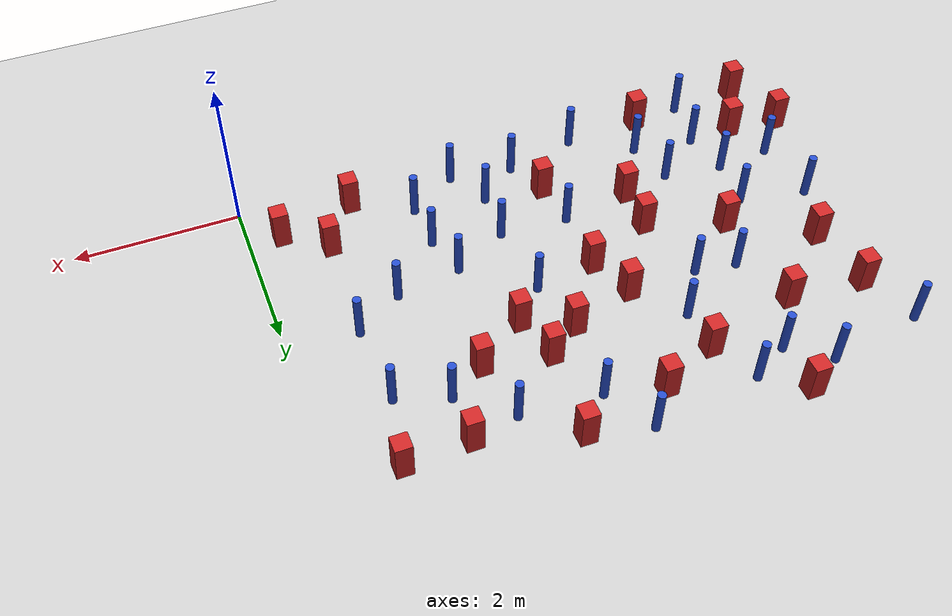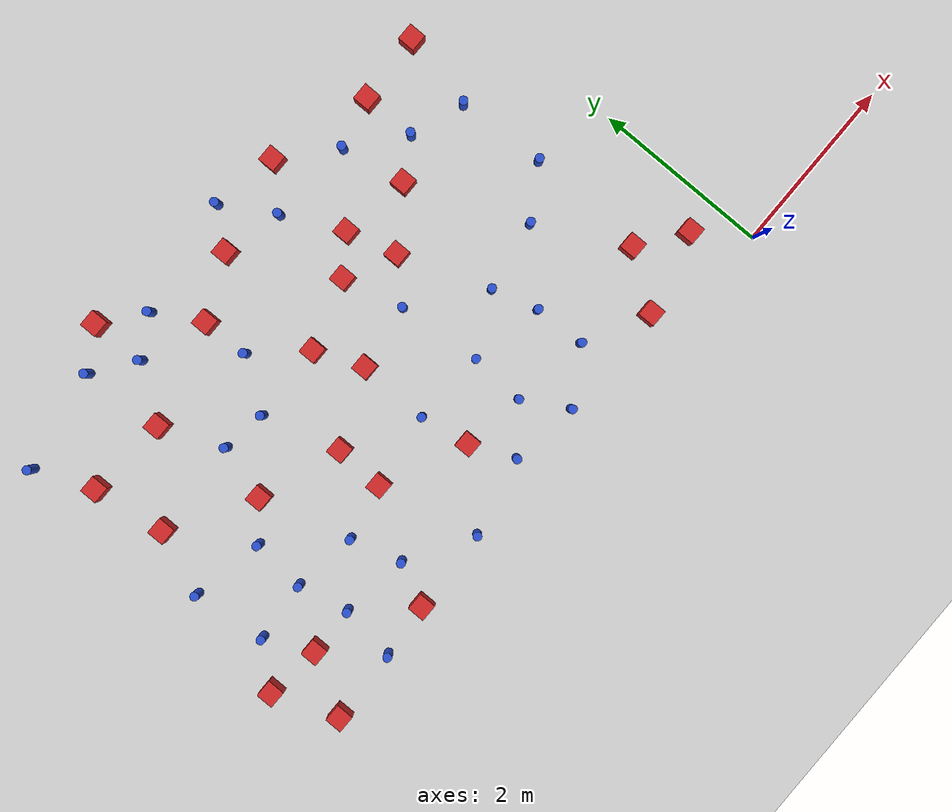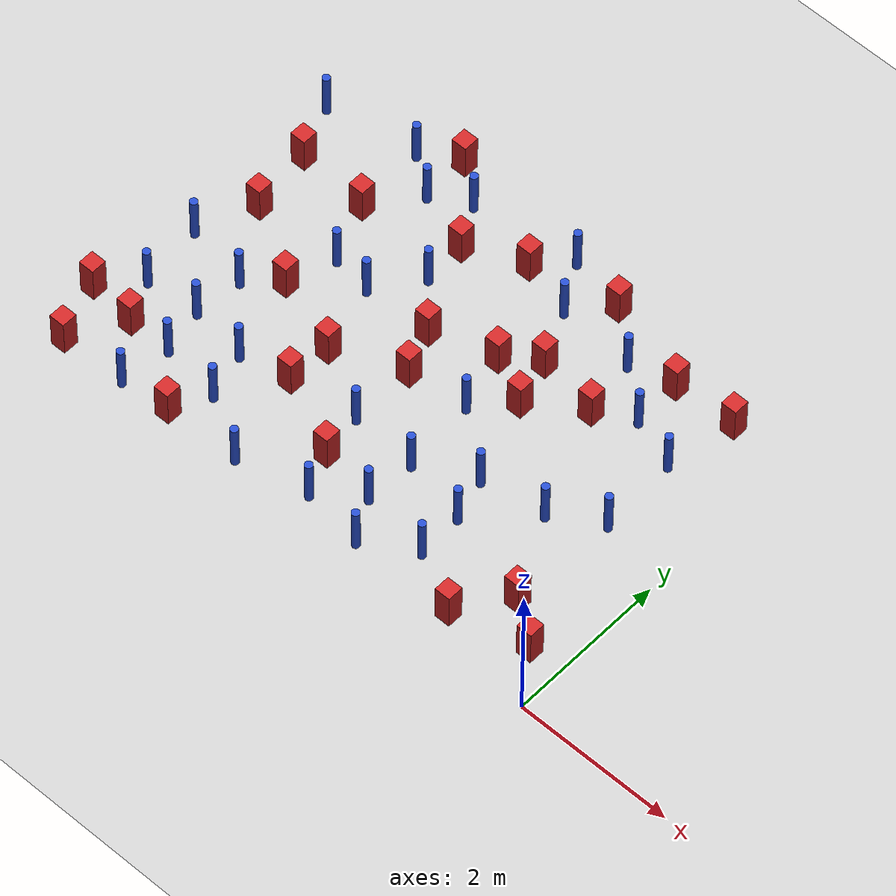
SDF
<sdf version="1.6">
 <world name="default">
  <model name="ground_plane">
   <static>1</static>
   <link name="link">
    <collision name="collision">
     <geometry><plane><normal>0 0 1</normal><size>100 100</size></plane></geometry>
     <surface><friction><ode><mu>100</mu><mu2>50</mu2></ode></friction></surface>
    </collision>
    <visual name="visual">
     <cast_shadows>0</cast_shadows>
     <geometry><plane><normal>0 0 1</normal><size>100 100</size></plane></geometry>
     <material>
      <ambient>1.0 1.0 1.0 1.0</ambient>
      <diffuse>0.8 0.8 0.8 1.0</diffuse>
      <specular>0.01 0.01 0.01 1.000000</specular>
     </material>
    </visual>
   </link>
  </model>
  <model name="pole_obstacle0">
   <static>true</static>
   <pose>-0.848686420528 2.28056023914 -2.66029137441e-07 -5.69430205631e-07 6.84129966562e-07 -8.68349370796e-08</pose>
   <link name="link">
    <pose>0 0 0.3 0 -0 0</pose>
    <inertial>
     <mass>1</mass>
     <inertia><ixx>0.145833</ixx><ixy>0</ixy><ixz>0</ixz><iyy>0.145833</iyy><iyz>0</iyz><izz>0.125</izz></inertia>
    </inertial>
    <collision name="collision">
     <geometry><cylinder><radius>0.05</radius><length>.6</length></cylinder></geometry>
    </collision>
    <visual name="visual">
     <geometry><cylinder><radius>0.05</radius><length>.6</length></cylinder></geometry>
     <material>
      <script><name>Gazebo/Blue</name><uri>file://media/materials/scripts/gazebo.material</uri></script>
     </material>
    </visual>
   </link>
  </model>
  <model name="pole_obstacle5">
   <static>true</static>
   <pose>-2.89578171638 1.43701102641 -2.66029137441e-07 -5.69430205626e-07 6.84129966567e-07 -8.68349370747e-08</pose>
   <link name="link">
    <pose>0 0 0.3 0 -0 0</pose>
    <inertial>
     <mass>1</mass>
     <inertia><ixx>0.145833</ixx><ixy>0</ixy><ixz>0</ixz><iyy>0.145833</iyy><iyz>0</iyz><izz>0.125</izz></inertia>
    </inertial>
    <collision name="collision">
     <geometry><cylinder><radius>0.05</radius><length>.6</length></cylinder></geometry>
    </collision>
    <visual name="visual">
     <geometry><cylinder><radius>0.05</radius><length>.6</length></cylinder></geometry>
     <material>
      <script><name>Gazebo/Blue</name><uri>file://media/materials/scripts/gazebo.material</uri></script>
     </material>
    </visual>
   </link>
  </model>
  <model name="square_post_obstacle2">
   <static>true</static>
   <pose>-6.54047121895 3.64302250898 -7.80171244635e-07 7.17449752808e-06 -5.6639232126e-07 2.2715510512e-05</pose>
   <link name="link">
    <pose>0 0 0.25 0 -0 0</pose>
    <inertial>
     <mass>100</mass>
     <inertia>
      <ixx>0.166667</ixx>
      <ixy>0</ixy>
      <ixz>0</ixz>
      <iyy>0.166667</iyy>
      <iyz>0</iyz>
      <izz>0.166667</izz>
     </inertia>
    </inertial>
    <collision name="collision"><geometry><box><size>.2 .2 .5</size></box></geometry></collision>
    <visual name="visual">
     <geometry><box><size>.2 .2 .5</size></box></geometry>
     <material>
      <script><name>Gazebo/Red</name><uri>file://media/materials/scripts/gazebo.material</uri></script>
     </material>
    </visual>
   </link>
  </model>
  <model name="square_post_obstacle5">
   <static>true</static>
   <pose>-6.42439165797 2.81819154532 -7.80171244635e-07 7.17449752808e-06 -5.6639232126e-07 2.2715510512e-05</pose>
   <link name="link">
    <pose>0 0 0.25 0 -0 0</pose>
    <inertial>
     <mass>100</mass>
     <inertia>
      <ixx>0.166667</ixx>
      <ixy>0</ixy>
      <ixz>0</ixz>
      <iyy>0.166667</iyy>
      <iyz>0</iyz>
      <izz>0.166667</izz>
     </inertia>
    </inertial>
    <collision name="collision"><geometry><box><size>.2 .2 .5</size></box></geometry></collision>
    <visual name="visual">
     <geometry><box><size>.2 .2 .5</size></box></geometry>
     <material>
      <script><name>Gazebo/Red</name><uri>file://media/materials/scripts/gazebo.material</uri></script>
     </material>
    </visual>
   </link>
  </model>
  <model name="pole_obstacle9">
   <static>true</static>
   <pose>-2.97673412354 2.38530855671 -2.66029137441e-07 -5.69430205643e-07 6.84129966548e-07 -8.68349370903e-08</pose>
   <link name="link">
    <pose>0 0 0.3 0 -0 0</pose>
    <inertial>
     <mass>1</mass>
     <inertia><ixx>0.145833</ixx><ixy>0</ixy><ixz>0</ixz><iyy>0.145833</iyy><iyz>0</iyz><izz>0.125</izz></inertia>
    </inertial>
    <collision name="collision">
     <geometry><cylinder><radius>0.05</radius><length>.6</length></cylinder></geometry>
    </collision>
    <visual name="visual">
     <geometry><cylinder><radius>0.05</radius><length>.6</length></cylinder></geometry>
     <material>
      <script><name>Gazebo/Blue</name><uri>file://media/materials/scripts/gazebo.material</uri></script>
     </material>
    </visual>
   </link>
  </model>
  <model name="pole_obstacle14">
   <static>true</static>
   <pose>-5.05208416302 0.661545683711 -2.66029137441e-07 -5.69430205635e-07 6.84129966557e-07 -8.68349370823e-08</pose>
   <link name="link">
    <pose>0 0 0.3 0 -0 0</pose>
    <inertial>
     <mass>1</mass>
     <inertia><ixx>0.145833</ixx><ixy>0</ixy><ixz>0</ixz><iyy>0.145833</iyy><iyz>0</iyz><izz>0.125</izz></inertia>
    </inertial>
    <collision name="collision">
     <geometry><cylinder><radius>0.05</radius><length>.6</length></cylinder></geometry>
    </collision>
    <visual name="visual">
     <geometry><cylinder><radius>0.05</radius><length>.6</length></cylinder></geometry>
     <material>
      <script><name>Gazebo/Blue</name><uri>file://media/materials/scripts/gazebo.material</uri></script>
     </material>
    </visual>
   </link>
  </model>
  <model name="pole_obstacle17">
   <static>true</static>
   <pose>-0.901334964104 3.28252300026 -2.66029137441e-07 -5.69430205631e-07 6.84129966562e-07 -8.68349370796e-08</pose>
   <link name="link">
    <pose>0 0 0.3 0 -0 0</pose>
    <inertial>
     <mass>1</mass>
     <inertia><ixx>0.145833</ixx><ixy>0</ixy><ixz>0</ixz><iyy>0.145833</iyy><iyz>0</iyz><izz>0.125</izz></inertia>
    </inertial>
    <collision name="collision">
     <geometry><cylinder><radius>0.05</radius><length>.6</length></cylinder></geometry>
    </collision>
    <visual name="visual">
     <geometry><cylinder><radius>0.05</radius><length>.6</length></cylinder></geometry>
     <material>
      <script><name>Gazebo/Blue</name><uri>file://media/materials/scripts/gazebo.material</uri></script>
     </material>
    </visual>
   </link>
  </model>
  <model name="square_post_obstacle13">
   <static>true</static>
   <pose>-5.1992375159 4.76956947477 -7.80171244635e-07 7.17449752808e-06 -5.6639232126e-07 2.2715510512e-05</pose>
   <link name="link">
    <pose>0 0 0.25 0 -0 0</pose>
    <inertial>
     <mass>100</mass>
     <inertia>
      <ixx>0.166667</ixx>
      <ixy>0</ixy>
      <ixz>0</ixz>
      <iyy>0.166667</iyy>
      <iyz>0</iyz>
      <izz>0.166667</izz>
     </inertia>
    </inertial>
    <collision name="collision"><geometry><box><size>.2 .2 .5</size></box></geometry></collision>
    <visual name="visual">
     <geometry><box><size>.2 .2 .5</size></box></geometry>
     <material>
      <script><name>Gazebo/Red</name><uri>file://media/materials/scripts/gazebo.material</uri></script>
     </material>
    </visual>
   </link>
  </model>
  <model name="square_post_obstacle17">
   <static>true</static>
   <pose>-4.55994984618 1.9230852197 -7.80171244635e-07 7.17449752808e-06 -5.6639232126e-07 2.2715510512e-05</pose>
   <link name="link">
    <pose>0 0 0.25 0 -0 0</pose>
    <inertial>
     <mass>100</mass>
     <inertia>
      <ixx>0.166667</ixx>
      <ixy>0</ixy>
      <ixz>0</ixz>
      <iyy>0.166667</iyy>
      <iyz>0</iyz>
      <izz>0.166667</izz>
     </inertia>
    </inertial>
    <collision name="collision"><geometry><box><size>.2 .2 .5</size></box></geometry></collision>
    <visual name="visual">
     <geometry><box><size>.2 .2 .5</size></box></geometry>
     <material>
      <script><name>Gazebo/Red</name><uri>file://media/materials/scripts/gazebo.material</uri></script>
     </material>
    </visual>
   </link>
  </model>
  <model name="pole_obstacle23">
   <static>true</static>
   <pose>-1.42129183735 1.9204971024 -2.66029137441e-07 -5.69430205631e-07 6.84129966561e-07 -8.68349370801e-08</pose>
   <link name="link">
    <pose>0 0 0.3 0 -0 0</pose>
    <inertial>
     <mass>1</mass>
     <inertia><ixx>0.145833</ixx><ixy>0</ixy><ixz>0</ixz><iyy>0.145833</iyy><iyz>0</iyz><izz>0.125</izz></inertia>
    </inertial>
    <collision name="collision">
     <geometry><cylinder><radius>0.05</radius><length>.6</length></cylinder></geometry>
    </collision>
    <visual name="visual">
     <geometry><cylinder><radius>0.05</radius><length>.6</length></cylinder></geometry>
     <material>
      <script><name>Gazebo/Blue</name><uri>file://media/materials/scripts/gazebo.material</uri></script>
     </material>
    </visual>
   </link>
  </model>
  <model name="pole_obstacle37">
   <static>true</static>
   <pose>-5.94030263849 1.33335862435 -2.66029137441e-07 -5.69430205627e-07 6.84129966567e-07 -8.68349370776e-08</pose>
   <link name="link">
    <pose>0 0 0.3 0 -0 0</pose>
    <inertial>
     <mass>1</mass>
     <inertia><ixx>0.145833</ixx><ixy>0</ixy><ixz>0</ixz><iyy>0.145833</iyy><iyz>0</iyz><izz>0.125</izz></inertia>
    </inertial>
    <collision name="collision">
     <geometry><cylinder><radius>0.05</radius><length>.6</length></cylinder></geometry>
    </collision>
    <visual name="visual">
     <geometry><cylinder><radius>0.05</radius><length>.6</length></cylinder></geometry>
     <material>
      <script><name>Gazebo/Blue</name><uri>file://media/materials/scripts/gazebo.material</uri></script>
     </material>
    </visual>
   </link>
  </model>
  <model name="pole_obstacle38">
   <static>true</static>
   <pose>-6.8269104755 4.3061819949 -2.66029137441e-07 -5.69430205655e-07 6.84129966534e-07 -8.68349370984e-08</pose>
   <link name="link">
    <pose>0 0 0.3 0 -0 0</pose>
    <inertial>
     <mass>1</mass>
     <inertia><ixx>0.145833</ixx><ixy>0</ixy><ixz>0</ixz><iyy>0.145833</iyy><iyz>0</iyz><izz>0.125</izz></inertia>
    </inertial>
    <collision name="collision">
     <geometry><cylinder><radius>0.05</radius><length>.6</length></cylinder></geometry>
    </collision>
    <visual name="visual">
     <geometry><cylinder><radius>0.05</radius><length>.6</length></cylinder></geometry>
     <material>
      <script><name>Gazebo/Blue</name><uri>file://media/materials/scripts/gazebo.material</uri></script>
     </material>
    </visual>
   </link>
  </model>
  <model name="pole_obstacle48">
   <static>true</static>
   <pose>-4.81402971322 2.79707173437 -2.66029137441e-07 -5.69430205643e-07 6.84129966548e-07 -8.68349370881e-08</pose>
   <link name="link">
    <pose>0 0 0.3 0 -0 0</pose>
    <inertial>
     <mass>1</mass>
     <inertia><ixx>0.145833</ixx><ixy>0</ixy><ixz>0</ixz><iyy>0.145833</iyy><iyz>0</iyz><izz>0.125</izz></inertia>
    </inertial>
    <collision name="collision">
     <geometry><cylinder><radius>0.05</radius><length>.6</length></cylinder></geometry>
    </collision>
    <visual name="visual">
     <geometry><cylinder><radius>0.05</radius><length>.6</length></cylinder></geometry>
     <material>
      <script><name>Gazebo/Blue</name><uri>file://media/materials/scripts/gazebo.material</uri></script>
     </material>
    </visual>
   </link>
  </model>
  <model name="pole_obstacle50">
   <static>true</static>
   <pose>-3.42742069103 0.425860745861 -2.66029137441e-07 -5.69430205624e-07 6.8412996657e-07 -8.6834937075e-08</pose>
   <link name="link">
    <pose>0 0 0.3 0 -0 0</pose>
    <inertial>
     <mass>1</mass>
     <inertia><ixx>0.145833</ixx><ixy>0</ixy><ixz>0</ixz><iyy>0.145833</iyy><iyz>0</iyz><izz>0.125</izz></inertia>
    </inertial>
    <collision name="collision">
     <geometry><cylinder><radius>0.05</radius><length>.6</length></cylinder></geometry>
    </collision>
    <visual name="visual">
     <geometry><cylinder><radius>0.05</radius><length>.6</length></cylinder></geometry>
     <material>
      <script><name>Gazebo/Blue</name><uri>file://media/materials/scripts/gazebo.material</uri></script>
     </material>
    </visual>
   </link>
  </model>
  <model name="square_post_obstacle42">
   <static>true</static>
   <pose>-0.911300587545 0.933627856815 -7.80171244635e-07 7.17449752808e-06 -5.6639232126e-07 2.2715510512e-05</pose>
   <link name="link">
    <pose>0 0 0.25 0 -0 0</pose>
    <inertial>
     <mass>100</mass>
     <inertia>
      <ixx>0.166667</ixx>
      <ixy>0</ixy>
      <ixz>0</ixz>
      <iyy>0.166667</iyy>
      <iyz>0</iyz>
      <izz>0.166667</izz>
     </inertia>
    </inertial>
    <collision name="collision"><geometry><box><size>.2 .2 .5</size></box></geometry></collision>
    <visual name="visual">
     <geometry><box><size>.2 .2 .5</size></box></geometry>
     <material>
      <script><name>Gazebo/Red</name><uri>file://media/materials/scripts/gazebo.material</uri></script>
     </material>
    </visual>
   </link>
  </model>
  <model name="pole_obstacle67">
   <static>true</static>
   <pose>-3.73621855298 1.48258846329 -2.66029137441e-07 -5.69430205626e-07 6.84129966567e-07 -8.68349370747e-08</pose>
   <link name="link">
    <pose>0 0 0.3 0 -0 0</pose>
    <inertial>
     <mass>1</mass>
     <inertia><ixx>0.145833</ixx><ixy>0</ixy><ixz>0</ixz><iyy>0.145833</iyy><iyz>0</iyz><izz>0.125</izz></inertia>
    </inertial>
    <collision name="collision">
     <geometry><cylinder><radius>0.05</radius><length>.6</length></cylinder></geometry>
    </collision>
    <visual name="visual">
     <geometry><cylinder><radius>0.05</radius><length>.6</length></cylinder></geometry>
     <material>
      <script><name>Gazebo/Blue</name><uri>file://media/materials/scripts/gazebo.material</uri></script>
     </material>
    </visual>
   </link>
  </model>
  <model name="square_post_obstacle52">
   <static>true</static>
   <pose>-3.64008201909 0.924743633225 -7.80171244635e-07 7.17449752808e-06 -5.6639232126e-07 2.2715510512e-05</pose>
   <link name="link">
    <pose>0 0 0.25 0 -0 0</pose>
    <inertial>
     <mass>100</mass>
     <inertia>
      <ixx>0.166667</ixx>
      <ixy>0</ixy>
      <ixz>0</ixz>
      <iyy>0.166667</iyy>
      <iyz>0</iyz>
      <izz>0.166667</izz>
     </inertia>
    </inertial>
    <collision name="collision"><geometry><box><size>.2 .2 .5</size></box></geometry></collision>
    <visual name="visual">
     <geometry><box><size>.2 .2 .5</size></box></geometry>
     <material>
      <script><name>Gazebo/Red</name><uri>file://media/materials/scripts/gazebo.material</uri></script>
     </material>
    </visual>
   </link>
  </model>
  <model name="square_post_obstacle60">
   <static>true</static>
   <pose>-3.14566420583 3.06978312451 -7.80171244635e-07 7.17449752808e-06 -5.6639232126e-07 2.2715510512e-05</pose>
   <link name="link">
    <pose>0 0 0.25 0 -0 0</pose>
    <inertial>
     <mass>100</mass>
     <inertia>
      <ixx>0.166667</ixx>
      <ixy>0</ixy>
      <ixz>0</ixz>
      <iyy>0.166667</iyy>
      <iyz>0</iyz>
      <izz>0.166667</izz>
     </inertia>
    </inertial>
    <collision name="collision"><geometry><box><size>.2 .2 .5</size></box></geometry></collision>
    <visual name="visual">
     <geometry><box><size>.2 .2 .5</size></box></geometry>
     <material>
      <script><name>Gazebo/Red</name><uri>file://media/materials/scripts/gazebo.material</uri></script>
     </material>
    </visual>
   </link>
  </model>
  <model name="square_post_obstacle68">
   <static>true</static>
   <pose>-5.27277134223 0.19338225897 -7.80171244635e-07 7.17449752808e-06 -5.6639232126e-07 2.2715510512e-05</pose>
   <link name="link">
    <pose>0 0 0.25 0 -0 0</pose>
    <inertial>
     <mass>100</mass>
     <inertia>
      <ixx>0.166667</ixx>
      <ixy>0</ixy>
      <ixz>0</ixz>
      <iyy>0.166667</iyy>
      <iyz>0</iyz>
      <izz>0.166667</izz>
     </inertia>
    </inertial>
    <collision name="collision"><geometry><box><size>.2 .2 .5</size></box></geometry></collision>
    <visual name="visual">
     <geometry><box><size>.2 .2 .5</size></box></geometry>
     <material>
      <script><name>Gazebo/Red</name><uri>file://media/materials/scripts/gazebo.material</uri></script>
     </material>
    </visual>
   </link>
  </model>
  <model name="square_post_obstacle78">
   <static>true</static>
   <pose>-2.58045832201 2.79671368986 -7.80171244635e-07 7.17449752808e-06 -5.6639232126e-07 2.2715510512e-05</pose>
   <link name="link">
    <pose>0 0 0.25 0 -0 0</pose>
    <inertial>
     <mass>100</mass>
     <inertia>
      <ixx>0.166667</ixx>
      <ixy>0</ixy>
      <ixz>0</ixz>
      <iyy>0.166667</iyy>
      <iyz>0</iyz>
      <izz>0.166667</izz>
     </inertia>
    </inertial>
    <collision name="collision"><geometry><box><size>.2 .2 .5</size></box></geometry></collision>
    <visual name="visual">
     <geometry><box><size>.2 .2 .5</size></box></geometry>
     <material>
      <script><name>Gazebo/Red</name><uri>file://media/materials/scripts/gazebo.material</uri></script>
     </material>
    </visual>
   </link>
  </model>
  <model name="square_post_obstacle91">
   <static>true</static>
   <pose>-3.72967712816 4.20466762363 -7.80171244635e-07 7.17449752808e-06 -5.6639232126e-07 2.2715510512e-05</pose>
   <link name="link">
    <pose>0 0 0.25 0 -0 0</pose>
    <inertial>
     <mass>100</mass>
     <inertia>
      <ixx>0.166667</ixx>
      <ixy>0</ixy>
      <ixz>0</ixz>
      <iyy>0.166667</iyy>
      <iyz>0</iyz>
      <izz>0.166667</izz>
     </inertia>
    </inertial>
    <collision name="collision"><geometry><box><size>.2 .2 .5</size></box></geometry></collision>
    <visual name="visual">
     <geometry><box><size>.2 .2 .5</size></box></geometry>
     <material>
      <script><name>Gazebo/Red</name><uri>file://media/materials/scripts/gazebo.material</uri></script>
     </material>
    </visual>
   </link>
  </model>
  <model name="square_post_obstacle96">
   <static>true</static>
   <pose>-6.99965705653 0.829258536956 -7.80171244635e-07 7.17449752808e-06 -5.6639232126e-07 2.2715510512e-05</pose>
   <link name="link">
    <pose>0 0 0.25 0 -0 0</pose>
    <inertial>
     <mass>100</mass>
     <inertia>
      <ixx>0.166667</ixx>
      <ixy>0</ixy>
      <ixz>0</ixz>
      <iyy>0.166667</iyy>
      <iyz>0</iyz>
      <izz>0.166667</izz>
     </inertia>
    </inertial>
    <collision name="collision"><geometry><box><size>.2 .2 .5</size></box></geometry></collision>
    <visual name="visual">
     <geometry><box><size>.2 .2 .5</size></box></geometry>
     <material>
      <script><name>Gazebo/Red</name><uri>file://media/materials/scripts/gazebo.material</uri></script>
     </material>
    </visual>
   </link>
  </model>
  <model name="square_post_obstacle104">
   <static>true</static>
   <pose>-0.730667829414 4.13623296343 -7.80171244635e-07 7.17449752808e-06 -5.6639232126e-07 2.2715510512e-05</pose>
   <link name="link">
    <pose>0 0 0.25 0 -0 0</pose>
    <inertial>
     <mass>100</mass>
     <inertia>
      <ixx>0.166667</ixx>
      <ixy>0</ixy>
      <ixz>0</ixz>
      <iyy>0.166667</iyy>
      <iyz>0</iyz>
      <izz>0.166667</izz>
     </inertia>
    </inertial>
    <collision name="collision"><geometry><box><size>.2 .2 .5</size></box></geometry></collision>
    <visual name="visual">
     <geometry><box><size>.2 .2 .5</size></box></geometry>
     <material>
      <script><name>Gazebo/Red</name><uri>file://media/materials/scripts/gazebo.material</uri></script>
     </material>
    </visual>
   </link>
  </model>
  <model name="square_post_obstacle109">
   <static>true</static>
   <pose>-5.60677347979 3.5698998525 -7.80171244635e-07 7.17449752808e-06 -5.6639232126e-07 2.2715510512e-05</pose>
   <link name="link">
    <pose>0 0 0.25 0 -0 0</pose>
    <inertial>
     <mass>100</mass>
     <inertia>
      <ixx>0.166667</ixx>
      <ixy>0</ixy>
      <ixz>0</ixz>
      <iyy>0.166667</iyy>
      <iyz>0</iyz>
      <izz>0.166667</izz>
     </inertia>
    </inertial>
    <collision name="collision"><geometry><box><size>.2 .2 .5</size></box></geometry></collision>
    <visual name="visual">
     <geometry><box><size>.2 .2 .5</size></box></geometry>
     <material>
      <script><name>Gazebo/Red</name><uri>file://media/materials/scripts/gazebo.material</uri></script>
     </material>
    </visual>
   </link>
  </model>
  <model name="pole_obstacle114">
   <static>true</static>
   <pose>-2.08666494042 3.96266187778 -2.66029137441e-07 -5.69430205654e-07 6.84129966535e-07 -8.68349370991e-08</pose>
   <link name="link">
    <pose>0 0 0.3 0 -0 0</pose>
    <inertial>
     <mass>1</mass>
     <inertia><ixx>0.145833</ixx><ixy>0</ixy><ixz>0</ixz><iyy>0.145833</iyy><iyz>0</iyz><izz>0.125</izz></inertia>
    </inertial>
    <collision name="collision">
     <geometry><cylinder><radius>0.05</radius><length>.6</length></cylinder></geometry>
    </collision>
    <visual name="visual">
     <geometry><cylinder><radius>0.05</radius><length>.6</length></cylinder></geometry>
     <material>
      <script><name>Gazebo/Blue</name><uri>file://media/materials/scripts/gazebo.material</uri></script>
     </material>
    </visual>
   </link>
  </model>
  <model name="pole_obstacle129">
   <static>true</static>
   <pose>-5.21219216984 1.23214642442 -2.66029137441e-07 -5.69430205627e-07 6.84129966567e-07 -8.68349370776e-08</pose>
   <link name="link">
    <pose>0 0 0.3 0 -0 0</pose>
    <inertial>
     <mass>1</mass>
     <inertia><ixx>0.145833</ixx><ixy>0</ixy><ixz>0</ixz><iyy>0.145833</iyy><iyz>0</iyz><izz>0.125</izz></inertia>
    </inertial>
    <collision name="collision">
     <geometry><cylinder><radius>0.05</radius><length>.6</length></cylinder></geometry>
    </collision>
    <visual name="visual">
     <geometry><cylinder><radius>0.05</radius><length>.6</length></cylinder></geometry>
     <material>
      <script><name>Gazebo/Blue</name><uri>file://media/materials/scripts/gazebo.material</uri></script>
     </material>
    </visual>
   </link>
  </model>
  <model name="pole_obstacle134">
   <static>true</static>
   <pose>-4.42611054176 3.3569830978 -2.66029137441e-07 -5.69430205643e-07 6.84129966548e-07 -8.68349370881e-08</pose>
   <link name="link">
    <pose>0 0 0.3 0 -0 0</pose>
    <inertial>
     <mass>1</mass>
     <inertia><ixx>0.145833</ixx><ixy>0</ixy><ixz>0</ixz><iyy>0.145833</iyy><iyz>0</iyz><izz>0.125</izz></inertia>
    </inertial>
    <collision name="collision">
     <geometry><cylinder><radius>0.05</radius><length>.6</length></cylinder></geometry>
    </collision>
    <visual name="visual">
     <geometry><cylinder><radius>0.05</radius><length>.6</length></cylinder></geometry>
     <material>
      <script><name>Gazebo/Blue</name><uri>file://media/materials/scripts/gazebo.material</uri></script>
     </material>
    </visual>
   </link>
  </model>
  <model name="pole_obstacle140">
   <static>true</static>
   <pose>-2.219305535 1.78585246803 -2.66029137441e-07 -5.69430205626e-07 6.84129966567e-07 -8.68349370747e-08</pose>
   <link name="link">
    <pose>0 0 0.3 0 -0 0</pose>
    <inertial>
     <mass>1</mass>
     <inertia><ixx>0.145833</ixx><ixy>0</ixy><ixz>0</ixz><iyy>0.145833</iyy><iyz>0</iyz><izz>0.125</izz></inertia>
    </inertial>
    <collision name="collision">
     <geometry><cylinder><radius>0.05</radius><length>.6</length></cylinder></geometry>
    </collision>
    <visual name="visual">
     <geometry><cylinder><radius>0.05</radius><length>.6</length></cylinder></geometry>
     <material>
      <script><name>Gazebo/Blue</name><uri>file://media/materials/scripts/gazebo.material</uri></script>
     </material>
    </visual>
   </link>
  </model>
  <model name="square_post_obstacle136">
   <static>true</static>
   <pose>-6.73247419097 0.107096696549 -7.80171244635e-07 7.17449752808e-06 -5.6639232126e-07 2.2715510512e-05</pose>
   <link name="link">
    <pose>0 0 0.25 0 -0 0</pose>
    <inertial>
     <mass>100</mass>
     <inertia>
      <ixx>0.166667</ixx>
      <ixy>0</ixy>
      <ixz>0</ixz>
      <iyy>0.166667</iyy>
      <iyz>0</iyz>
      <izz>0.166667</izz>
     </inertia>
    </inertial>
    <collision name="collision"><geometry><box><size>.2 .2 .5</size></box></geometry></collision>
    <visual name="visual">
     <geometry><box><size>.2 .2 .5</size></box></geometry>
     <material>
      <script><name>Gazebo/Red</name><uri>file://media/materials/scripts/gazebo.material</uri></script>
     </material>
    </visual>
   </link>
  </model>
  <model name="pole_obstacle142">
   <static>true</static>
   <pose>-5.90288303049 0.136081755126 -2.66029137441e-07 -5.69430205623e-07 6.84129966571e-07 -8.6834937074e-08</pose>
   <link name="link">
    <pose>0 0 0.3 0 -0 0</pose>
    <inertial>
     <mass>1</mass>
     <inertia><ixx>0.145833</ixx><ixy>0</ixy><ixz>0</ixz><iyy>0.145833</iyy><iyz>0</iyz><izz>0.125</izz></inertia>
    </inertial>
    <collision name="collision">
     <geometry><cylinder><radius>0.05</radius><length>.6</length></cylinder></geometry>
    </collision>
    <visual name="visual">
     <geometry><cylinder><radius>0.05</radius><length>.6</length></cylinder></geometry>
     <material>
      <script><name>Gazebo/Blue</name><uri>file://media/materials/scripts/gazebo.material</uri></script>
     </material>
    </visual>
   </link>
  </model>
  <model name="pole_obstacle149">
   <static>true</static>
   <pose>-5.19295854252 4.16116752009 -2.66029137441e-07 -5.69430205655e-07 6.84129966534e-07 -8.68349370984e-08</pose>
   <link name="link">
    <pose>0 0 0.3 0 -0 0</pose>
    <inertial>
     <mass>1</mass>
     <inertia><ixx>0.145833</ixx><ixy>0</ixy><ixz>0</ixz><iyy>0.145833</iyy><iyz>0</iyz><izz>0.125</izz></inertia>
    </inertial>
    <collision name="collision">
     <geometry><cylinder><radius>0.05</radius><length>.6</length></cylinder></geometry>
    </collision>
    <visual name="visual">
     <geometry><cylinder><radius>0.05</radius><length>.6</length></cylinder></geometry>
     <material>
      <script><name>Gazebo/Blue</name><uri>file://media/materials/scripts/gazebo.material</uri></script>
     </material>
    </visual>
   </link>
  </model>
  <model name="square_post_obstacle145">
   <static>true</static>
   <pose>-3.71612547728 2.28558053988 -7.80171244635e-07 7.17449752808e-06 -5.6639232126e-07 2.2715510512e-05</pose>
   <link name="link">
    <pose>0 0 0.25 0 -0 0</pose>
    <inertial>
     <mass>100</mass>
     <inertia>
      <ixx>0.166667</ixx>
      <ixy>0</ixy>
      <ixz>0</ixz>
      <iyy>0.166667</iyy>
      <iyz>0</iyz>
      <izz>0.166667</izz>
     </inertia>
    </inertial>
    <collision name="collision"><geometry><box><size>.2 .2 .5</size></box></geometry></collision>
    <visual name="visual">
     <geometry><box><size>.2 .2 .5</size></box></geometry>
     <material>
      <script><name>Gazebo/Red</name><uri>file://media/materials/scripts/gazebo.material</uri></script>
     </material>
    </visual>
   </link>
  </model>
  <model name="square_post_obstacle150">
   <static>true</static>
   <pose>-0.401342020013 0.565022232125 -7.80171244635e-07 7.17449752808e-06 -5.6639232126e-07 2.2715510512e-05</pose>
   <link name="link">
    <pose>0 0 0.25 0 -0 0</pose>
    <inertial>
     <mass>100</mass>
     <inertia>
      <ixx>0.166667</ixx>
      <ixy>0</ixy>
      <ixz>0</ixz>
      <iyy>0.166667</iyy>
      <iyz>0</iyz>
      <izz>0.166667</izz>
     </inertia>
    </inertial>
    <collision name="collision"><geometry><box><size>.2 .2 .5</size></box></geometry></collision>
    <visual name="visual">
     <geometry><box><size>.2 .2 .5</size></box></geometry>
     <material>
      <script><name>Gazebo/Red</name><uri>file://media/materials/scripts/gazebo.material</uri></script>
     </material>
    </visual>
   </link>
  </model>
  <model name="pole_obstacle153">
   <static>true</static>
   <pose>-6.71294454983 2.10223958526 -2.66029137441e-07 -5.69430205643e-07 6.84129966548e-07 -8.68349370881e-08</pose>
   <link name="link">
    <pose>0 0 0.3 0 -0 0</pose>
    <inertial>
     <mass>1</mass>
     <inertia><ixx>0.145833</ixx><ixy>0</ixy><ixz>0</ixz><iyy>0.145833</iyy><iyz>0</iyz><izz>0.125</izz></inertia>
    </inertial>
    <collision name="collision">
     <geometry><cylinder><radius>0.05</radius><length>.6</length></cylinder></geometry>
    </collision>
    <visual name="visual">
     <geometry><cylinder><radius>0.05</radius><length>.6</length></cylinder></geometry>
     <material>
      <script><name>Gazebo/Blue</name><uri>file://media/materials/scripts/gazebo.material</uri></script>
     </material>
    </visual>
   </link>
  </model>
  <model name="pole_obstacle158">
   <static>true</static>
   <pose>-5.88810526931 1.94225286683 -2.66029137441e-07 -5.69430205627e-07 6.84129966567e-07 -8.68349370776e-08</pose>
   <link name="link">
    <pose>0 0 0.3 0 -0 0</pose>
    <inertial>
     <mass>1</mass>
     <inertia><ixx>0.145833</ixx><ixy>0</ixy><ixz>0</ixz><iyy>0.145833</iyy><iyz>0</iyz><izz>0.125</izz></inertia>
    </inertial>
    <collision name="collision">
     <geometry><cylinder><radius>0.05</radius><length>.6</length></cylinder></geometry>
    </collision>
    <visual name="visual">
     <geometry><cylinder><radius>0.05</radius><length>.6</length></cylinder></geometry>
     <material>
      <script><name>Gazebo/Blue</name><uri>file://media/materials/scripts/gazebo.material</uri></script>
     </material>
    </visual>
   </link>
  </model>
  <model name="square_post_obstacle153">
   <static>true</static>
   <pose>-3.93580549494 2.82231418407 -7.80171244635e-07 7.17449752808e-06 -5.6639232126e-07 2.2715510512e-05</pose>
   <link name="link">
    <pose>0 0 0.25 0 -0 0</pose>
    <inertial>
     <mass>100</mass>
     <inertia>
      <ixx>0.166667</ixx>
      <ixy>0</ixy>
      <ixz>0</ixz>
      <iyy>0.166667</iyy>
      <iyz>0</iyz>
      <izz>0.166667</izz>
     </inertia>
    </inertial>
    <collision name="collision"><geometry><box><size>.2 .2 .5</size></box></geometry></collision>
    <visual name="visual">
     <geometry><box><size>.2 .2 .5</size></box></geometry>
     <material>
      <script><name>Gazebo/Red</name><uri>file://media/materials/scripts/gazebo.material</uri></script>
     </material>
    </visual>
   </link>
  </model>
  <model name="pole_obstacle159">
   <static>true</static>
   <pose>-4.73685361307 4.41505624564 -2.66029137441e-07 -5.69430205655e-07 6.84129966534e-07 -8.68349370984e-08</pose>
   <link name="link">
    <pose>0 0 0.3 0 -0 0</pose>
    <inertial>
     <mass>1</mass>
     <inertia><ixx>0.145833</ixx><ixy>0</ixy><ixz>0</ixz><iyy>0.145833</iyy><iyz>0</iyz><izz>0.125</izz></inertia>
    </inertial>
    <collision name="collision">
     <geometry><cylinder><radius>0.05</radius><length>.6</length></cylinder></geometry>
    </collision>
    <visual name="visual">
     <geometry><cylinder><radius>0.05</radius><length>.6</length></cylinder></geometry>
     <material>
      <script><name>Gazebo/Blue</name><uri>file://media/materials/scripts/gazebo.material</uri></script>
     </material>
    </visual>
   </link>
  </model>
  <model name="pole_obstacle160">
   <static>true</static>
   <pose>-4.31919029627 0.227387287423 -2.66029137441e-07 -5.69430205627e-07 6.84129966567e-07 -8.68349370772e-08</pose>
   <link name="link">
    <pose>0 0 0.3 0 -0 0</pose>
    <inertial>
     <mass>1</mass>
     <inertia><ixx>0.145833</ixx><ixy>0</ixy><ixz>0</ixz><iyy>0.145833</iyy><iyz>0</iyz><izz>0.125</izz></inertia>
    </inertial>
    <collision name="collision">
     <geometry><cylinder><radius>0.05</radius><length>.6</length></cylinder></geometry>
    </collision>
    <visual name="visual">
     <geometry><cylinder><radius>0.05</radius><length>.6</length></cylinder></geometry>
     <material>
      <script><name>Gazebo/Blue</name><uri>file://media/materials/scripts/gazebo.material</uri></script>
     </material>
    </visual>
   </link>
  </model>
  <model name="pole_obstacle163">
   <static>true</static>
   <pose>-5.31978811303 2.86978206607 -2.66029137441e-07 -5.69430205643e-07 6.84129966548e-07 -8.68349370881e-08</pose>
   <link name="link">
    <pose>0 0 0.3 0 -0 0</pose>
    <inertial>
     <mass>1</mass>
     <inertia><ixx>0.145833</ixx><ixy>0</ixy><ixz>0</ixz><iyy>0.145833</iyy><iyz>0</iyz><izz>0.125</izz></inertia>
    </inertial>
    <collision name="collision">
     <geometry><cylinder><radius>0.05</radius><length>.6</length></cylinder></geometry>
    </collision>
    <visual name="visual">
     <geometry><cylinder><radius>0.05</radius><length>.6</length></cylinder></geometry>
     <material>
      <script><name>Gazebo/Blue</name><uri>file://media/materials/scripts/gazebo.material</uri></script>
     </material>
    </visual>
   </link>
  </model>
  <model name="square_post_obstacle154">
   <static>true</static>
   <pose>-1.95386705835 3.23249901817 -7.80171244635e-07 7.17449752808e-06 -5.6639232126e-07 2.2715510512e-05</pose>
   <link name="link">
    <pose>0 0 0.25 0 -0 0</pose>
    <inertial>
     <mass>100</mass>
     <inertia>
      <ixx>0.166667</ixx>
      <ixy>0</ixy>
      <ixz>0</ixz>
      <iyy>0.166667</iyy>
      <iyz>0</iyz>
      <izz>0.166667</izz>
     </inertia>
    </inertial>
    <collision name="collision"><geometry><box><size>.2 .2 .5</size></box></geometry></collision>
    <visual name="visual">
     <geometry><box><size>.2 .2 .5</size></box></geometry>
     <material>
      <script><name>Gazebo/Red</name><uri>file://media/materials/scripts/gazebo.material</uri></script>
     </material>
    </visual>
   </link>
  </model>
  <model name="pole_obstacle166">
   <static>true</static>
   <pose>-2.04780215147 0.691148654816 -2.66029137441e-07 -5.69430205633e-07 6.84129966559e-07 -8.68349370822e-08</pose>
   <link name="link">
    <pose>0 0 0.3 0 -0 0</pose>
    <inertial>
     <mass>1</mass>
     <inertia><ixx>0.145833</ixx><ixy>0</ixy><ixz>0</ixz><iyy>0.145833</iyy><iyz>0</iyz><izz>0.125</izz></inertia>
    </inertial>
    <collision name="collision">
     <geometry><cylinder><radius>0.05</radius><length>.6</length></cylinder></geometry>
    </collision>
    <visual name="visual">
     <geometry><cylinder><radius>0.05</radius><length>.6</length></cylinder></geometry>
     <material>
      <script><name>Gazebo/Blue</name><uri>file://media/materials/scripts/gazebo.material</uri></script>
     </material>
    </visual>
   </link>
  </model>
  <model name="pole_obstacle168">
   <static>true</static>
   <pose>-2.64980389584 0.317509346208 -2.66029137441e-07 -5.69430205624e-07 6.8412996657e-07 -8.6834937075e-08</pose>
   <link name="link">
    <pose>0 0 0.3 0 -0 0</pose>
    <inertial>
     <mass>1</mass>
     <inertia><ixx>0.145833</ixx><ixy>0</ixy><ixz>0</ixz><iyy>0.145833</iyy><iyz>0</iyz><izz>0.125</izz></inertia>
    </inertial>
    <collision name="collision">
     <geometry><cylinder><radius>0.05</radius><length>.6</length></cylinder></geometry>
    </collision>
    <visual name="visual">
     <geometry><cylinder><radius>0.05</radius><length>.6</length></cylinder></geometry>
     <material>
      <script><name>Gazebo/Blue</name><uri>file://media/materials/scripts/gazebo.material</uri></script>
     </material>
    </visual>
   </link>
  </model>
  <model name="square_post_obstacle168">
   <static>true</static>
   <pose>-1.33221684085 0.325240372384 -7.80171244635e-07 7.17449752808e-06 -5.6639232126e-07 2.2715510512e-05</pose>
   <link name="link">
    <pose>0 0 0.25 0 -0 0</pose>
    <inertial>
     <mass>100</mass>
     <inertia>
      <ixx>0.166667</ixx>
      <ixy>0</ixy>
      <ixz>0</ixz>
      <iyy>0.166667</iyy>
      <iyz>0</iyz>
      <izz>0.166667</izz>
     </inertia>
    </inertial>
    <collision name="collision"><geometry><box><size>.2 .2 .5</size></box></geometry></collision>
    <visual name="visual">
     <geometry><box><size>.2 .2 .5</size></box></geometry>
     <material>
      <script><name>Gazebo/Red</name><uri>file://media/materials/scripts/gazebo.material</uri></script>
     </material>
    </visual>
   </link>
  </model>
  <model name="pole_obstacle181">
   <static>true</static>
   <pose>-1.51116002958 3.49697659944 -2.66029137441e-07 -5.69430205634e-07 6.84129966558e-07 -8.68349370806e-08</pose>
   <link name="link">
    <pose>0 0 0.3 0 -0 0</pose>
    <inertial>
     <mass>1</mass>
     <inertia><ixx>0.145833</ixx><ixy>0</ixy><ixz>0</ixz><iyy>0.145833</iyy><iyz>0</iyz><izz>0.125</izz></inertia>
    </inertial>
    <collision name="collision">
     <geometry><cylinder><radius>0.05</radius><length>.6</length></cylinder></geometry>
    </collision>
    <visual name="visual">
     <geometry><cylinder><radius>0.05</radius><length>.6</length></cylinder></geometry>
     <material>
      <script><name>Gazebo/Blue</name><uri>file://media/materials/scripts/gazebo.material</uri></script>
     </material>
    </visual>
   </link>
  </model>
  <model name="square_post_obstacle188">
   <static>true</static>
   <pose>-2.65516225812 4.45003013458 -7.80171244635e-07 7.17449752808e-06 -5.6639232126e-07 2.2715510512e-05</pose>
   <link name="link">
    <pose>0 0 0.25 0 -0 0</pose>
    <inertial>
     <mass>100</mass>
     <inertia>
      <ixx>0.166667</ixx>
      <ixy>0</ixy>
      <ixz>0</ixz>
      <iyy>0.166667</iyy>
      <iyz>0</iyz>
      <izz>0.166667</izz>
     </inertia>
    </inertial>
    <collision name="collision"><geometry><box><size>.2 .2 .5</size></box></geometry></collision>
    <visual name="visual">
     <geometry><box><size>.2 .2 .5</size></box></geometry>
     <material>
      <script><name>Gazebo/Red</name><uri>file://media/materials/scripts/gazebo.material</uri></script>
     </material>
    </visual>
   </link>
  </model>
  <model name="square_post_obstacle190">
   <static>true</static>
   <pose>-5.49748118774 2.25527996644 -7.80171244635e-07 7.17449752808e-06 -5.6639232126e-07 2.2715510512e-05</pose>
   <link name="link">
    <pose>0 0 0.25 0 -0 0</pose>
    <inertial>
     <mass>100</mass>
     <inertia>
      <ixx>0.166667</ixx>
      <ixy>0</ixy>
      <ixz>0</ixz>
      <iyy>0.166667</iyy>
      <iyz>0</iyz>
      <izz>0.166667</izz>
     </inertia>
    </inertial>
    <collision name="collision"><geometry><box><size>.2 .2 .5</size></box></geometry></collision>
    <visual name="visual">
     <geometry><box><size>.2 .2 .5</size></box></geometry>
     <material>
      <script><name>Gazebo/Red</name><uri>file://media/materials/scripts/gazebo.material</uri></script>
     </material>
    </visual>
   </link>
  </model>
  <model name="pole_obstacle190">
   <static>true</static>
   <pose>-6.61814956042 1.2740945025 -2.66029137441e-07 -5.69430205627e-07 6.84129966567e-07 -8.68349370776e-08</pose>
   <link name="link">
    <pose>0 0 0.3 0 -0 0</pose>
    <inertial>
     <mass>1</mass>
     <inertia><ixx>0.145833</ixx><ixy>0</ixy><ixz>0</ixz><iyy>0.145833</iyy><iyz>0</iyz><izz>0.125</izz></inertia>
    </inertial>
    <collision name="collision">
     <geometry><cylinder><radius>0.05</radius><length>.6</length></cylinder></geometry>
    </collision>
    <visual name="visual">
     <geometry><cylinder><radius>0.05</radius><length>.6</length></cylinder></geometry>
     <material>
      <script><name>Gazebo/Blue</name><uri>file://media/materials/scripts/gazebo.material</uri></script>
     </material>
    </visual>
   </link>
  </model>
  <model name="pole_obstacle191">
   <static>true</static>
   <pose>-5.66546950287 4.50246836784 -2.66029137441e-07 -5.69430205655e-07 6.84129966534e-07 -8.68349370984e-08</pose>
   <link name="link">
    <pose>0 0 0.3 0 -0 0</pose>
    <inertial>
     <mass>1</mass>
     <inertia><ixx>0.145833</ixx><ixy>0</ixy><ixz>0</ixz><iyy>0.145833</iyy><iyz>0</iyz><izz>0.125</izz></inertia>
    </inertial>
    <collision name="collision">
     <geometry><cylinder><radius>0.05</radius><length>.6</length></cylinder></geometry>
    </collision>
    <visual name="visual">
     <geometry><cylinder><radius>0.05</radius><length>.6</length></cylinder></geometry>
     <material>
      <script><name>Gazebo/Blue</name><uri>file://media/materials/scripts/gazebo.material</uri></script>
     </material>
    </visual>
   </link>
  </model>
  <model name="square_post_obstacle202">
   <static>true</static>
   <pose>-6.36669027378 0.755893837273 -7.80171244635e-07 7.17449752808e-06 -5.6639232126e-07 2.2715510512e-05</pose>
   <link name="link">
    <pose>0 0 0.25 0 -0 0</pose>
    <inertial>
     <mass>100</mass>
     <inertia>
      <ixx>0.166667</ixx>
      <ixy>0</ixy>
      <ixz>0</ixz>
      <iyy>0.166667</iyy>
      <iyz>0</iyz>
      <izz>0.166667</izz>
     </inertia>
    </inertial>
    <collision name="collision"><geometry><box><size>.2 .2 .5</size></box></geometry></collision>
    <visual name="visual">
     <geometry><box><size>.2 .2 .5</size></box></geometry>
     <material>
      <script><name>Gazebo/Red</name><uri>file://media/materials/scripts/gazebo.material</uri></script>
     </material>
    </visual>
   </link>
  </model>
  <model name="pole_obstacle193">
   <static>true</static>
   <pose>-3.06161654217 4.02646627797 -2.66029137441e-07 -5.69430205622e-07 6.84129966573e-07 -8.68349370723e-08</pose>
   <link name="link">
    <pose>0 0 0.3 0 -0 0</pose>
    <inertial>
     <mass>1</mass>
     <inertia><ixx>0.145833</ixx><ixy>0</ixy><ixz>0</ixz><iyy>0.145833</iyy><iyz>0</iyz><izz>0.125</izz></inertia>
    </inertial>
    <collision name="collision">
     <geometry><cylinder><radius>0.05</radius><length>.6</length></cylinder></geometry>
    </collision>
    <visual name="visual">
     <geometry><cylinder><radius>0.05</radius><length>.6</length></cylinder></geometry>
     <material>
      <script><name>Gazebo/Blue</name><uri>file://media/materials/scripts/gazebo.material</uri></script>
     </material>
    </visual>
   </link>
  </model>
  <model name="pole_obstacle198">
   <static>true</static>
   <pose>-2.93015857206 0.816250272652 -2.66029137441e-07 -5.69430205624e-07 6.8412996657e-07 -8.68349370746e-08</pose>
   <link name="link">
    <pose>0 0 0.3 0 -0 0</pose>
    <inertial>
     <mass>1</mass>
     <inertia><ixx>0.145833</ixx><ixy>0</ixy><ixz>0</ixz><iyy>0.145833</iyy><iyz>0</iyz><izz>0.125</izz></inertia>
    </inertial>
    <collision name="collision">
     <geometry><cylinder><radius>0.05</radius><length>.6</length></cylinder></geometry>
    </collision>
    <visual name="visual">
     <geometry><cylinder><radius>0.05</radius><length>.6</length></cylinder></geometry>
     <material>
      <script><name>Gazebo/Blue</name><uri>file://media/materials/scripts/gazebo.material</uri></script>
     </material>
    </visual>
   </link>
  </model>
  <model name="pole_obstacle199">
   <static>true</static>
   <pose>-3.39994452373 4.60904622834 -2.66029137441e-07 -5.69430205635e-07 6.84129966557e-07 -8.68349370832e-08</pose>
   <link name="link">
    <pose>0 0 0.3 0 -0 0</pose>
    <inertial>
     <mass>1</mass>
     <inertia><ixx>0.145833</ixx><ixy>0</ixy><ixz>0</ixz><iyy>0.145833</iyy><iyz>0</iyz><izz>0.125</izz></inertia>
    </inertial>
    <collision name="collision">
     <geometry><cylinder><radius>0.05</radius><length>.6</length></cylinder></geometry>
    </collision>
    <visual name="visual">
     <geometry><cylinder><radius>0.05</radius><length>.6</length></cylinder></geometry>
     <material>
      <script><name>Gazebo/Blue</name><uri>file://media/materials/scripts/gazebo.material</uri></script>
     </material>
    </visual>
   </link>
  </model>
  <model name="pole_obstacle201">
   <static>true</static>
   <pose>-2.07104359062 1.27009999293 -2.66029137441e-07 -5.69430205626e-07 6.84129966567e-07 -8.68349370747e-08</pose>
   <link name="link">
    <pose>0 0 0.3 0 -0 0</pose>
    <inertial>
     <mass>1</mass>
     <inertia><ixx>0.145833</ixx><ixy>0</ixy><ixz>0</ixz><iyy>0.145833</iyy><iyz>0</iyz><izz>0.125</izz></inertia>
    </inertial>
    <collision name="collision">
     <geometry><cylinder><radius>0.05</radius><length>.6</length></cylinder></geometry>
    </collision>
    <visual name="visual">
     <geometry><cylinder><radius>0.05</radius><length>.6</length></cylinder></geometry>
     <material>
      <script><name>Gazebo/Blue</name><uri>file://media/materials/scripts/gazebo.material</uri></script>
     </material>
    </visual>
   </link>
  </model>
  <model name="square_post_obstacle212">
   <static>true</static>
   <pose>-2.73911742236 3.36104917152 -7.80171244635e-07 7.17449752808e-06 -5.6639232126e-07 2.2715510512e-05</pose>
   <link name="link">
    <pose>0 0 0.25 0 -0 0</pose>
    <inertial>
     <mass>100</mass>
     <inertia>
      <ixx>0.166667</ixx>
      <ixy>0</ixy>
      <ixz>0</ixz>
      <iyy>0.166667</iyy>
      <iyz>0</iyz>
      <izz>0.166667</izz>
     </inertia>
    </inertial>
    <collision name="collision"><geometry><box><size>.2 .2 .5</size></box></geometry></collision>
    <visual name="visual">
     <geometry><box><size>.2 .2 .5</size></box></geometry>
     <material>
      <script><name>Gazebo/Red</name><uri>file://media/materials/scripts/gazebo.material</uri></script>
     </material>
    </visual>
   </link>
  </model>
  <model name="square_post_obstacle214">
   <static>true</static>
   <pose>-4.4354606142 3.88581533287 -7.80171244635e-07 7.17449752808e-06 -5.6639232126e-07 2.2715510512e-05</pose>
   <link name="link">
    <pose>0 0 0.25 0 -0 0</pose>
    <inertial>
     <mass>100</mass>
     <inertia>
      <ixx>0.166667</ixx>
      <ixy>0</ixy>
      <ixz>0</ixz>
      <iyy>0.166667</iyy>
      <iyz>0</iyz>
      <izz>0.166667</izz>
     </inertia>
    </inertial>
    <collision name="collision"><geometry><box><size>.2 .2 .5</size></box></geometry></collision>
    <visual name="visual">
     <geometry><box><size>.2 .2 .5</size></box></geometry>
     <material>
      <script><name>Gazebo/Red</name><uri>file://media/materials/scripts/gazebo.material</uri></script>
     </material>
    </visual>
   </link>
  </model>
  <model name="pole_obstacle212">
   <static>true</static>
   <pose>-5.81723358072 0.764244661976 -2.66029137441e-07 -5.69430205635e-07 6.84129966557e-07 -8.68349370823e-08</pose>
   <link name="link">
    <pose>0 0 0.3 0 -0 0</pose>
    <inertial>
     <mass>1</mass>
     <inertia><ixx>0.145833</ixx><ixy>0</ixy><ixz>0</ixz><iyy>0.145833</iyy><iyz>0</iyz><izz>0.125</izz></inertia>
    </inertial>
    <collision name="collision">
     <geometry><cylinder><radius>0.05</radius><length>.6</length></cylinder></geometry>
    </collision>
    <visual name="visual">
     <geometry><cylinder><radius>0.05</radius><length>.6</length></cylinder></geometry>
     <material>
      <script><name>Gazebo/Blue</name><uri>file://media/materials/scripts/gazebo.material</uri></script>
     </material>
    </visual>
   </link>
  </model>
  <model name="square_post_obstacle230">
   <static>true</static>
   <pose>-1.51756995899 4.09633997169 -7.80171244635e-07 7.17449752808e-06 -5.6639232126e-07 2.2715510512e-05</pose>
   <link name="link">
    <pose>0 0 0.25 0 -0 0</pose>
    <inertial>
     <mass>100</mass>
     <inertia>
      <ixx>0.166667</ixx>
      <ixy>0</ixy>
      <ixz>0</ixz>
      <iyy>0.166667</iyy>
      <iyz>0</iyz>
      <izz>0.166667</izz>
     </inertia>
    </inertial>
    <collision name="collision"><geometry><box><size>.2 .2 .5</size></box></geometry></collision>
    <visual name="visual">
     <geometry><box><size>.2 .2 .5</size></box></geometry>
     <material>
      <script><name>Gazebo/Red</name><uri>file://media/materials/scripts/gazebo.material</uri></script>
     </material>
    </visual>
   </link>
  </model>
  <model name="square_post_obstacle235">
   <static>true</static>
   <pose>-4.58255995899 1.36467997169 -7.80171244635e-07 7.17449752808e-06 -5.6639232126e-07 2.2715510512e-05</pose>
   <link name="link">
    <pose>0 0 0.25 0 -0 0</pose>
    <inertial>
     <mass>100</mass>
     <inertia>
      <ixx>0.166667</ixx>
      <ixy>0</ixy>
      <ixz>0</ixz>
      <iyy>0.166667</iyy>
      <iyz>0</iyz>
      <izz>0.166667</izz>
     </inertia>
    </inertial>
    <collision name="collision"><geometry><box><size>.2 .2 .5</size></box></geometry></collision>
    <visual name="visual">
     <geometry><box><size>.2 .2 .5</size></box></geometry>
     <material>
      <script><name>Gazebo/Red</name><uri>file://media/materials/scripts/gazebo.material</uri></script>
     </material>
    </visual>
   </link>
  </model>
 </world>
</sdf>
